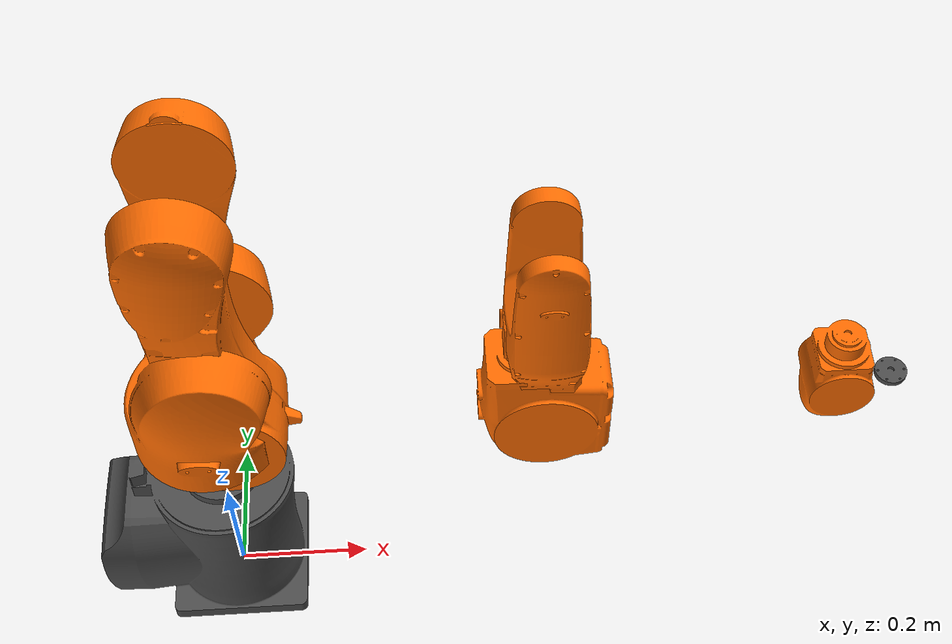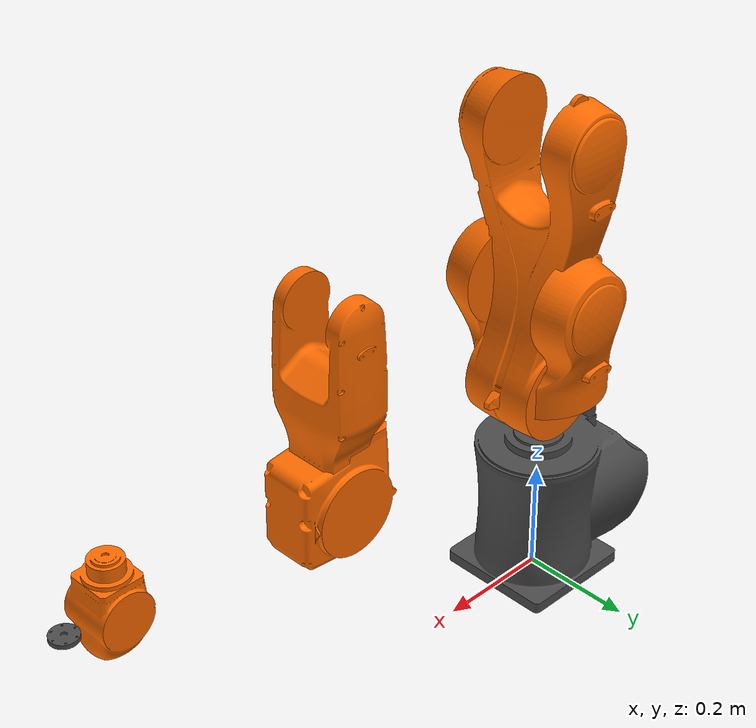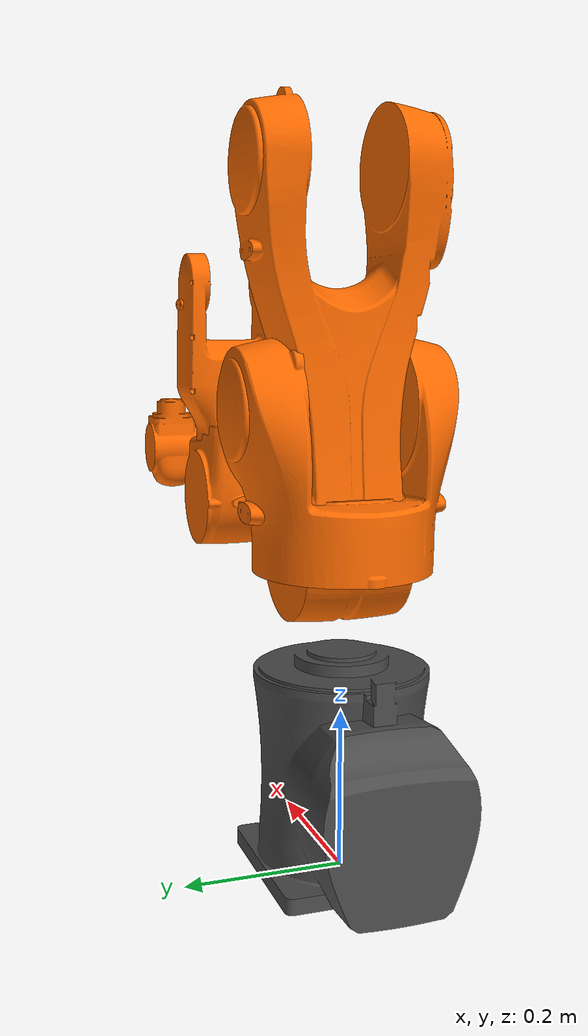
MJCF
<mujoco model="kuka_kr6r900sixx">
  <compiler angle="radian" meshdir="../urdf/meshes/"/>

  <asset>
    <mesh name="base_link" content_type="model/stl" file="base_link.stl"/>
    <mesh name="link_1" content_type="model/stl" file="link_1.stl"/>
    <mesh name="link_2" content_type="model/stl" file="link_2.stl"/>
    <mesh name="link_3" content_type="model/stl" file="link_3.stl"/>
    <mesh name="link_4" content_type="model/stl" file="link_4.stl"/>
    <mesh name="link_5" content_type="model/stl" file="link_5.stl"/>
    <mesh name="link_6" content_type="model/stl" file="link_6.stl"/>
  </asset>

  <worldbody>
    <geom type="mesh" rgba="0.3 0.3 0.3 1" mesh="base_link"/>
    <body name="link_1" pos="0 0 0.4">
      <joint name="joint_a1" pos="0 0 0" axis="0 0 -1" range="-2.96706 2.96706"/>
      <geom type="mesh" rgba="1 0.42 0 1" mesh="link_1"/>
      <body name="link_2" pos="0.025 0 0">
        <joint name="joint_a2" pos="0 0 0" axis="0 1 0" range="-3.31613 0.785398"/>
        <geom type="mesh" rgba="1 0.42 0 1" mesh="link_2"/>
        <body name="link_3" pos="0.455 0 0">
          <joint name="joint_a3" pos="0 0 0" axis="0 1 0" range="-2.0944 2.72271"/>
          <geom type="mesh" rgba="1 0.42 0 1" mesh="link_3"/>
          <body name="link_4" pos="0 0 0.035">
            <joint name="joint_a4" pos="0 0 0" axis="-1 0 0" range="-3.22886 3.22886"/>
            <geom type="mesh" rgba="1 0.42 0 1" mesh="link_4"/>
            <body name="link_5" pos="0.42 0 0">
              <joint name="joint_a5" pos="0 0 0" axis="0 1 0" range="-2.0944 2.0944"/>
              <geom type="mesh" rgba="1 0.42 0 1" mesh="link_5"/>
              <body name="link_6" pos="0.08 0 0">
                <joint name="joint_a6" pos="0 0 0" axis="-1 0 0" range="-6.10865 6.10865"/>
                <geom type="mesh" rgba="0.3 0.3 0.3 1" mesh="link_6"/>
              </body>
            </body>
          </body>
        </body>
      </body>
    </body>
  </worldbody>
</mujoco>
